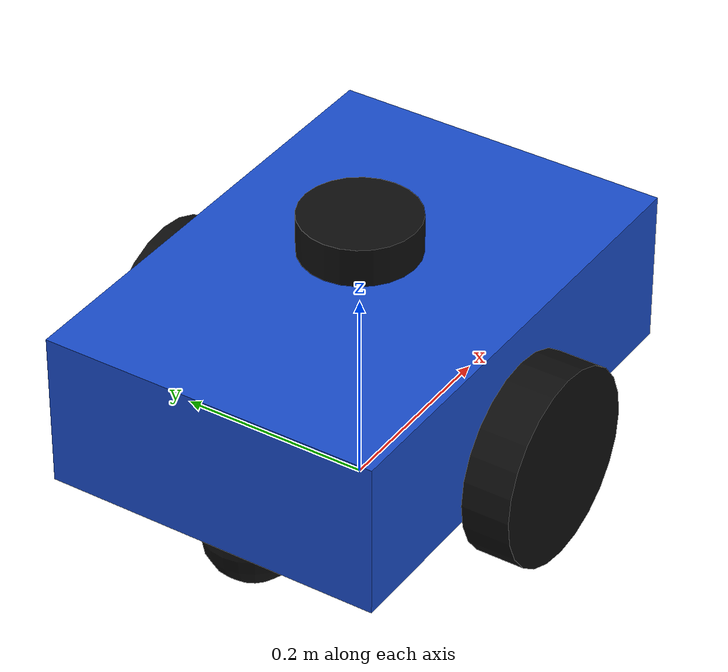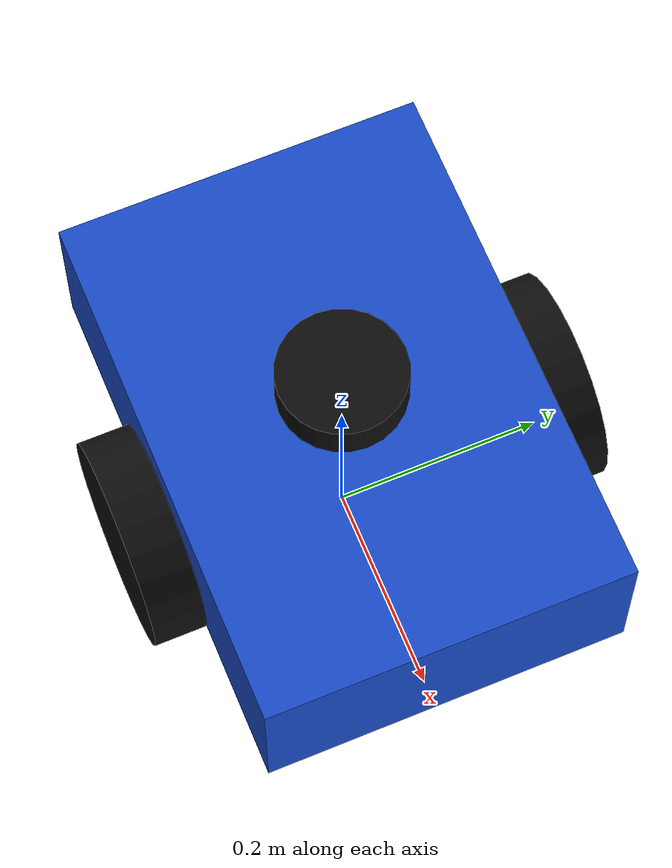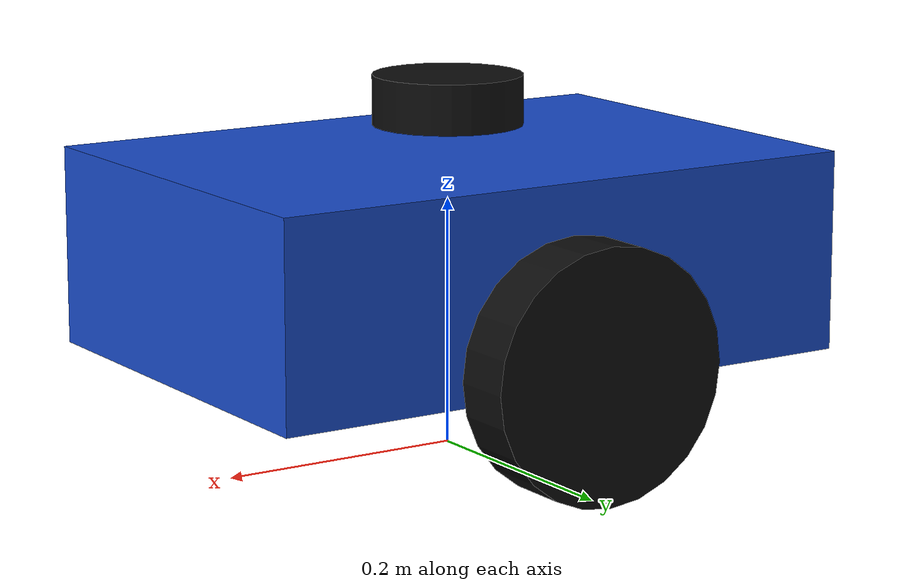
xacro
<?xml version="1.0"?>

<robot xmlns:xacro="http://www.ros.org/wiki/xacro"
       name="delivery_robot">

  <!-- MATERIALS                                              -->

  <material name="blue">
    <color rgba="0.1 0.3 0.8 1"/>
  </material>

  <material name="black">
    <color rgba="0.05 0.05 0.05 1"/>
  </material>

  <!-- BASE FOOTPRINT                                         -->

  <link name="base_footprint"/>

  <!-- MAIN ROBOT CHASSIS                                     -->

  <link name="base_link">

    <visual>
      <origin xyz="0 0 0.16" rpy="0 0 0"/>

      <geometry>
        <box size="0.50 0.35 0.16"/>
      </geometry>

      <material name="blue"/>
    </visual>

    <collision>
      <origin xyz="0 0 0.16" rpy="0 0 0"/>

      <geometry>
        <box size="0.50 0.35 0.16"/>
      </geometry>
    </collision>

    <inertial>
      <origin xyz="0 0 0.16" rpy="0 0 0"/>

      <mass value="10.0"/>

      <inertia
        ixx="0.135"
        ixy="0.0"
        ixz="0.0"
        iyy="0.242"
        iyz="0.0"
        izz="0.310"/>
    </inertial>

  </link>

  <!-- BASE FOOTPRINT -> BASE LINK                            -->

  <joint name="base_footprint_joint" type="fixed">

    <parent link="base_footprint"/>
    <child link="base_link"/>

    <origin xyz="0 0 0" rpy="0 0 0"/>

  </joint>

  <!-- LEFT WHEEL                                             -->

  <link name="left_wheel_link">

    <visual>
      <origin xyz="0 0 0" rpy="1.5708 0 0"/>

      <geometry>
        <cylinder radius="0.10" length="0.05"/>
      </geometry>

      <material name="black"/>
    </visual>

    <collision>
      <origin xyz="0 0 0" rpy="1.5708 0 0"/>

      <geometry>
        <cylinder radius="0.10" length="0.05"/>
      </geometry>
    </collision>

    <inertial>
      <origin xyz="0 0 0" rpy="0 0 0"/>

      <mass value="1.0"/>

      <inertia
        ixx="0.0031"
        ixy="0.0"
        ixz="0.0"
        iyy="0.0050"
        iyz="0.0"
        izz="0.0031"/>
    </inertial>

  </link>

  <joint name="left_wheel_joint" type="continuous">

    <parent link="base_link"/>
    <child link="left_wheel_link"/>

    <origin xyz="0 0.20 0.10" rpy="0 0 0"/>

    <axis xyz="0 1 0"/>

    <dynamics
      damping="0.1"
      friction="0.0"/>

  </joint>

  <!-- RIGHT WHEEL                                            -->

  <link name="right_wheel_link">

    <visual>
      <origin xyz="0 0 0" rpy="1.5708 0 0"/>

      <geometry>
        <cylinder radius="0.10" length="0.05"/>
      </geometry>

      <material name="black"/>
    </visual>

    <collision>
      <origin xyz="0 0 0" rpy="1.5708 0 0"/>

      <geometry>
        <cylinder radius="0.10" length="0.05"/>
      </geometry>
    </collision>

    <inertial>
      <origin xyz="0 0 0" rpy="0 0 0"/>

      <mass value="1.0"/>

      <inertia
        ixx="0.0031"
        ixy="0.0"
        ixz="0.0"
        iyy="0.0050"
        iyz="0.0"
        izz="0.0031"/>
    </inertial>

  </link>

  <joint name="right_wheel_joint" type="continuous">

    <parent link="base_link"/>
    <child link="right_wheel_link"/>

    <origin xyz="0 -0.20 0.10" rpy="0 0 0"/>

    <axis xyz="0 1 0"/>

    <dynamics
      damping="0.1"
      friction="0.0"/>

  </joint>

  <!-- CASTER WHEEL                                           -->

  <link name="caster_wheel_link">

    <visual>
      <geometry>
        <sphere radius="0.05"/>
      </geometry>

      <material name="black"/>
    </visual>

    <collision>
      <geometry>
        <sphere radius="0.05"/>
      </geometry>
    </collision>

    <inertial>
      <origin xyz="0 0 0" rpy="0 0 0"/>

      <mass value="0.5"/>

      <inertia
        ixx="0.0005"
        ixy="0.0"
        ixz="0.0"
        iyy="0.0005"
        iyz="0.0"
        izz="0.0005"/>
    </inertial>

  </link>

  <joint name="caster_wheel_joint" type="fixed">

    <parent link="base_link"/>
    <child link="caster_wheel_link"/>

    <origin xyz="-0.18 0 0.05" rpy="0 0 0"/>

  </joint>

  <!-- WHEEL / CASTER GAZEBO FRICTION                         -->

  <gazebo reference="left_wheel_link">

    <mu1>1.0</mu1>
    <mu2>1.0</mu2>

  </gazebo>

  <gazebo reference="right_wheel_link">

    <mu1>1.0</mu1>
    <mu2>1.0</mu2>

  </gazebo>

  <gazebo reference="caster_wheel_link">

    <mu1>0.001</mu1>
    <mu2>0.001</mu2>

  </gazebo>

  <!-- GAZEBO DIFFERENTIAL DRIVE                              -->

  <gazebo>

    <plugin
      filename="gz-sim-diff-drive-system"
      name="gz::sim::systems::DiffDrive">

      <!-- Wheel joints -->
      <left_joint>left_wheel_joint</left_joint>
      <right_joint>right_wheel_joint</right_joint>

      <!-- Robot dimensions -->
      <wheel_separation>0.40</wheel_separation>
      <wheel_radius>0.10</wheel_radius>

      <!-- Velocity command -->
      <topic>/cmd_vel</topic>

      <!-- Odometry -->
      <odom_topic>/odom</odom_topic>

      <!-- TF -->
      <tf_topic>/tf</tf_topic>

      <frame_id>odom</frame_id>
      <child_frame_id>base_footprint</child_frame_id>

    </plugin>

  </gazebo>

  <!-- LIDAR LINK                                             -->

  <link name="lidar_link">

    <visual>

      <geometry>
        <cylinder radius="0.06" length="0.04"/>
      </geometry>

      <material name="black"/>

    </visual>

    <collision>

      <geometry>
        <cylinder radius="0.06" length="0.04"/>
      </geometry>

    </collision>

    <inertial>

      <origin xyz="0 0 0" rpy="0 0 0"/>

      <mass value="0.2"/>

      <inertia
        ixx="0.0001"
        ixy="0.0"
        ixz="0.0"
        iyy="0.0001"
        iyz="0.0"
        izz="0.0001"/>

    </inertial>

  </link>

  <!-- BASE LINK -> LIDAR                                     -->

  <joint name="lidar_joint" type="fixed">

    <parent link="base_link"/>
    <child link="lidar_link"/>

    <origin xyz="0 0 0.28" rpy="0 0 0"/>

  </joint>
  <gazebo reference="lidar_joint">
    <preserveFixedJoint>true</preserveFixedJoint>
  </gazebo>

  <!-- GAZEBO GPU LIDAR                                       -->

  <gazebo reference="lidar_link">

    <sensor name="gpu_lidar" type="gpu_lidar">

      <topic>scan</topic>

      <update_rate>10</update_rate>

      <lidar>

        <scan>

          <horizontal>

            <samples>640</samples>

            <resolution>1</resolution>

            <!-- Approximately -80 degrees -->
            <min_angle>-1.396263</min_angle>

            <!-- Approximately +80 degrees -->
            <max_angle>1.396263</max_angle>

          </horizontal>

          <vertical>

            <samples>1</samples>

            <resolution>1</resolution>

            <min_angle>0</min_angle>

            <max_angle>0</max_angle>

          </vertical>

        </scan>

        <range>

          <min>0.08</min>

          <max>10.0</max>

          <resolution>0.01</resolution>

        </range>

      </lidar>

      <always_on>true</always_on>

      <visualize>true</visualize>

    </sensor>

  </gazebo>

</robot>
